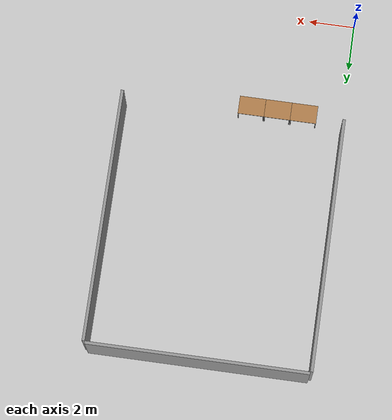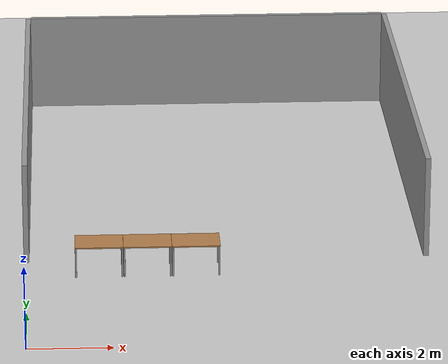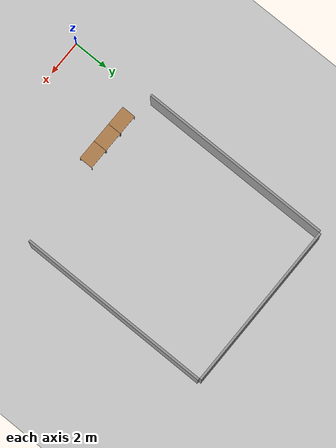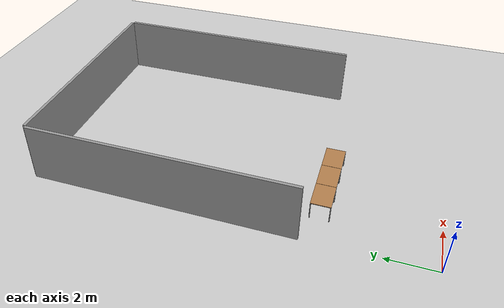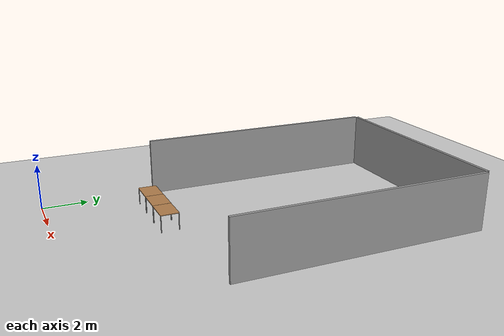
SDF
<sdf version="1.7">
 <world name="default">
  <model name="ground_plane">
   <static>1</static>
   <link name="link">
    <collision name="collision">
     <geometry><plane><normal>0 0 1</normal><size>100 100</size></plane></geometry>
     <surface>
      <contact><collide_bitmask>65535</collide_bitmask></contact>
      <friction><ode><mu>100</mu><mu2>50</mu2></ode></friction>
     </surface>
    </collision>
    <visual name="visual">
     <cast_shadows>0</cast_shadows>
     <geometry><plane><normal>0 0 1</normal><size>100 100</size></plane></geometry>
     <material>
      <script><uri>file://media/materials/scripts/gazebo.material</uri><name>Gazebo/Grey</name></script>
     </material>
    </visual>
   </link>
  </model>
  <model name="wall2">
   <pose>4.78373 10.5765 0 0 -0 1.5708</pose>
   <link name="Wall_27">
    <collision name="Wall_27_Collision">
     <geometry><box><size>11 0.13 2.5</size></box></geometry>
     <pose>0 0 1.25 0 -0 0</pose>
    </collision>
    <visual name="Wall_27_Visual">
     <pose>0 0 1.25 0 -0 0</pose>
     <geometry><box><size>11 0.13 2.5</size></box></geometry>
     <material>
      <script><uri>file://media/materials/scripts/gazebo.material</uri><name>Gazebo/Grey</name></script>
      <ambient>1 1 1 1</ambient>
     </material>
     <meta><layer>0</layer></meta>
    </visual>
    <pose>-0.064778 4.81014 0 0 -0 0</pose>
   </link>
   <link name="Wall_29">
    <collision name="Wall_29_Collision">
     <geometry><box><size>9.49 0.13 2.5</size></box></geometry>
     <pose>0 0 1.25 0 -0 0</pose>
    </collision>
    <visual name="Wall_29_Visual">
     <pose>0 0 1.25 0 -0 0</pose>
     <geometry><box><size>9.49 0.13 2.5</size></box></geometry>
     <material>
      <script><uri>file://media/materials/scripts/gazebo.material</uri><name>Gazebo/Grey</name></script>
      <ambient>1 1 1 1</ambient>
     </material>
     <meta><layer>0</layer></meta>
    </visual>
    <pose>5.50002 7.4e-05 0 0 -0 -1.5708</pose>
   </link>
   <link name="Wall_31">
    <collision name="Wall_31_Collision">
     <geometry><box><size>11 0.13 2.5</size></box></geometry>
     <pose>0 0 1.25 0 -0 0</pose>
    </collision>
    <visual name="Wall_31_Visual">
     <pose>0 0 1.25 0 -0 0</pose>
     <geometry><box><size>11 0.13 2.5</size></box></geometry>
     <material>
      <script><uri>file://media/materials/scripts/gazebo.material</uri><name>Gazebo/Grey</name></script>
      <ambient>1 1 1 1</ambient>
     </material>
     <meta><layer>0</layer></meta>
    </visual>
    <pose>-0.065021 -4.81014 0 0 -0 0</pose>
   </link>
   <static>1</static>
  </model>
  <model name="table_mod_clone_0">
   <link name="link">
    <inertial>
     <mass>1</mass>
     <inertia><ixx>1</ixx><ixy>0</ixy><ixz>0</ixz><iyy>1</iyy><iyz>0</iyz><izz>1</izz></inertia>
    </inertial>
    <visual name="visual1">
     <pose>0 0 0.87 0 -0 0</pose>
     <geometry><box><size>1.15 0.8 0.03</size></box></geometry>
     <material>
      <script><uri>file://media/materials/scripts/gazebo.material</uri><name>Gazebo/Wood</name></script>
      <shader type="pixel"><normal_map>__default__</normal_map></shader>
      <ambient>1 1 1 1</ambient>
      <diffuse>1 1 1 1</diffuse>
      <specular>0.2 0.2 0.2 1</specular>
      <emissive>0 0 0 1</emissive>
     </material>
    </visual>
    <visual name="back_right_leg">
     <pose>-0.55 -0.38 0.5 0 -0 0</pose>
     <geometry><cylinder><radius>0.02</radius><length>0.75</length></cylinder></geometry>
     <material>
      <script><uri>file://media/materials/scripts/gazebo.material</uri><name>Gazebo/Grey</name></script>
      <shader type="pixel"><normal_map>__default__</normal_map></shader>
      <ambient>0.3 0.3 0.3 1</ambient>
      <diffuse>0.7 0.7 0.7 1</diffuse>
      <specular>0.01 0.01 0.01 1</specular>
      <emissive>0 0 0 1</emissive>
     </material>
    </visual>
    <visual name="front_right_leg">
     <pose>0.55 -0.38 0.5 0 -0 0</pose>
     <geometry><cylinder><radius>0.02</radius><length>0.75</length></cylinder></geometry>
     <material>
      <script><uri>file://media/materials/scripts/gazebo.material</uri><name>Gazebo/Grey</name></script>
      <shader type="pixel"><normal_map>__default__</normal_map></shader>
      <ambient>0.3 0.3 0.3 1</ambient>
      <diffuse>0.7 0.7 0.7 1</diffuse>
      <specular>0.01 0.01 0.01 1</specular>
      <emissive>0 0 0 1</emissive>
     </material>
    </visual>
    <visual name="back_left_leg">
     <pose>-0.55 0.38 0.5 0 -0 0</pose>
     <geometry><cylinder><radius>0.02</radius><length>0.75</length></cylinder></geometry>
     <material>
      <script><uri>file://media/materials/scripts/gazebo.material</uri><name>Gazebo/Grey</name></script>
      <shader type="pixel"><normal_map>__default__</normal_map></shader>
      <ambient>0.3 0.3 0.3 1</ambient>
      <diffuse>0.7 0.7 0.7 1</diffuse>
      <specular>0.01 0.01 0.01 1</specular>
      <emissive>0 0 0 1</emissive>
     </material>
    </visual>
    <visual name="front_left_leg">
     <pose>0.55 0.38 0.5 0 -0 0</pose>
     <geometry><cylinder><radius>0.02</radius><length>0.75</length></cylinder></geometry>
     <material>
      <script><uri>file://media/materials/scripts/gazebo.material</uri><name>Gazebo/Grey</name></script>
      <shader type="pixel"><normal_map>__default__</normal_map></shader>
      <ambient>0.3 0.3 0.3 1</ambient>
      <diffuse>0.7 0.7 0.7 1</diffuse>
      <specular>0.01 0.01 0.01 1</specular>
      <emissive>0 0 0 1</emissive>
     </material>
    </visual>
    <collision name="surface">
     <pose>0 0 0.87 0 -0 0</pose>
     <geometry><box><size>1.15 0.8 0.03</size></box></geometry>
     <surface>
      <friction>
       <ode><mu>0.6</mu><mu2>0.6</mu2><fdir1>0 0 0</fdir1><slip1>0</slip1><slip2>0</slip2></ode>
       <torsional>
        <coefficient>1</coefficient>
        <patch_radius>0</patch_radius>
        <surface_radius>0</surface_radius>
        <use_patch_radius>1</use_patch_radius>
        <ode><slip>0</slip></ode>
       </torsional>
      </friction>
      <bounce><restitution_coefficient>0</restitution_coefficient><threshold>1e+06</threshold></bounce>
      <contact>
       <collide_without_contact>0</collide_without_contact>
       <collide_without_contact_bitmask>1</collide_without_contact_bitmask>
       <collide_bitmask>1</collide_bitmask>
       <ode>
        <soft_cfm>0</soft_cfm>
        <soft_erp>0.2</soft_erp>
        <kp>1e+13</kp>
        <kd>1</kd>
        <max_vel>0.01</max_vel>
        <min_depth>0</min_depth>
       </ode>
       <bullet>
        <split_impulse>1</split_impulse>
        <split_impulse_penetration_threshold>-0.01</split_impulse_penetration_threshold>
        <soft_cfm>0</soft_cfm>
        <soft_erp>0.2</soft_erp>
        <kp>1e+13</kp>
        <kd>1</kd>
       </bullet>
      </contact>
     </surface>
    </collision>
    <collision name="back_right_leg">
     <pose>-0.55 -0.38 0.5 0 -0 0</pose>
     <geometry><cylinder><radius>0.02</radius><length>0.75</length></cylinder></geometry>
     <surface>
      <friction>
       <ode><mu>1</mu><mu2>1</mu2><fdir1>0 0 0</fdir1><slip1>0</slip1><slip2>0</slip2></ode>
       <torsional>
        <coefficient>1</coefficient>
        <patch_radius>0</patch_radius>
        <surface_radius>0</surface_radius>
        <use_patch_radius>1</use_patch_radius>
        <ode><slip>0</slip></ode>
       </torsional>
      </friction>
      <bounce><restitution_coefficient>0</restitution_coefficient><threshold>1e+06</threshold></bounce>
      <contact>
       <collide_without_contact>0</collide_without_contact>
       <collide_without_contact_bitmask>1</collide_without_contact_bitmask>
       <collide_bitmask>1</collide_bitmask>
       <ode>
        <soft_cfm>0</soft_cfm>
        <soft_erp>0.2</soft_erp>
        <kp>1e+13</kp>
        <kd>1</kd>
        <max_vel>0.01</max_vel>
        <min_depth>0</min_depth>
       </ode>
       <bullet>
        <split_impulse>1</split_impulse>
        <split_impulse_penetration_threshold>-0.01</split_impulse_penetration_threshold>
        <soft_cfm>0</soft_cfm>
        <soft_erp>0.2</soft_erp>
        <kp>1e+13</kp>
        <kd>1</kd>
       </bullet>
      </contact>
     </surface>
    </collision>
    <collision name="back_left_leg">
     <pose>-0.55 0.38 0.5 0 -0 0</pose>
     <geometry><cylinder><radius>0.02</radius><length>0.75</length></cylinder></geometry>
     <surface>
      <friction>
       <ode><mu>1</mu><mu2>1</mu2><fdir1>0 0 0</fdir1><slip1>0</slip1><slip2>0</slip2></ode>
       <torsional>
        <coefficient>1</coefficient>
        <patch_radius>0</patch_radius>
        <surface_radius>0</surface_radius>
        <use_patch_radius>1</use_patch_radius>
        <ode><slip>0</slip></ode>
       </torsional>
      </friction>
      <bounce><restitution_coefficient>0</restitution_coefficient><threshold>1e+06</threshold></bounce>
      <contact>
       <collide_without_contact>0</collide_without_contact>
       <collide_without_contact_bitmask>1</collide_without_contact_bitmask>
       <collide_bitmask>1</collide_bitmask>
       <ode>
        <soft_cfm>0</soft_cfm>
        <soft_erp>0.2</soft_erp>
        <kp>1e+13</kp>
        <kd>1</kd>
        <max_vel>0.01</max_vel>
        <min_depth>0</min_depth>
       </ode>
       <bullet>
        <split_impulse>1</split_impulse>
        <split_impulse_penetration_threshold>-0.01</split_impulse_penetration_threshold>
        <soft_cfm>0</soft_cfm>
        <soft_erp>0.2</soft_erp>
        <kp>1e+13</kp>
        <kd>1</kd>
       </bullet>
      </contact>
     </surface>
    </collision>
    <collision name="front_left_leg">
     <pose>0.55 0.38 0.5 0 -0 0</pose>
     <geometry><cylinder><radius>0.02</radius><length>0.75</length></cylinder></geometry>
     <surface>
      <friction>
       <ode><mu>1</mu><mu2>1</mu2><fdir1>0 0 0</fdir1><slip1>0</slip1><slip2>0</slip2></ode>
       <torsional>
        <coefficient>1</coefficient>
        <patch_radius>0</patch_radius>
        <surface_radius>0</surface_radius>
        <use_patch_radius>1</use_patch_radius>
        <ode><slip>0</slip></ode>
       </torsional>
      </friction>
      <bounce><restitution_coefficient>0</restitution_coefficient><threshold>1e+06</threshold></bounce>
      <contact>
       <collide_without_contact>0</collide_without_contact>
       <collide_without_contact_bitmask>1</collide_without_contact_bitmask>
       <collide_bitmask>1</collide_bitmask>
       <ode>
        <soft_cfm>0</soft_cfm>
        <soft_erp>0.2</soft_erp>
        <kp>1e+13</kp>
        <kd>1</kd>
        <max_vel>0.01</max_vel>
        <min_depth>0</min_depth>
       </ode>
       <bullet>
        <split_impulse>1</split_impulse>
        <split_impulse_penetration_threshold>-0.01</split_impulse_penetration_threshold>
        <soft_cfm>0</soft_cfm>
        <soft_erp>0.2</soft_erp>
        <kp>1e+13</kp>
        <kd>1</kd>
       </bullet>
      </contact>
     </surface>
    </collision>
    <collision name="front_right_leg">
     <pose>0.55 -0.38 0.5 0 -0 0</pose>
     <geometry><cylinder><radius>0.02</radius><length>0.75</length></cylinder></geometry>
     <surface>
      <friction>
       <ode><mu>1</mu><mu2>1</mu2><fdir1>0 0 0</fdir1><slip1>0</slip1><slip2>0</slip2></ode>
       <torsional>
        <coefficient>1</coefficient>
        <patch_radius>0</patch_radius>
        <surface_radius>0</surface_radius>
        <use_patch_radius>1</use_patch_radius>
        <ode><slip>0</slip></ode>
       </torsional>
      </friction>
      <bounce><restitution_coefficient>0</restitution_coefficient><threshold>1e+06</threshold></bounce>
      <contact>
       <collide_without_contact>0</collide_without_contact>
       <collide_without_contact_bitmask>1</collide_without_contact_bitmask>
       <collide_bitmask>1</collide_bitmask>
       <ode>
        <soft_cfm>0</soft_cfm>
        <soft_erp>0.2</soft_erp>
        <kp>1e+13</kp>
        <kd>1</kd>
        <max_vel>0.01</max_vel>
        <min_depth>0</min_depth>
       </ode>
       <bullet>
        <split_impulse>1</split_impulse>
        <split_impulse_penetration_threshold>-0.01</split_impulse_penetration_threshold>
        <soft_cfm>0</soft_cfm>
        <soft_erp>0.2</soft_erp>
        <kp>1e+13</kp>
        <kd>1</kd>
       </bullet>
      </contact>
     </surface>
    </collision>
   </link>
   <static>1</static>
   <pose>1.7084 4.46917 -0.134214 0 0 -4e-06</pose>
  </model>
  <model name="table_mod_clone_0_clone">
   <link name="link">
    <inertial>
     <mass>1</mass>
     <inertia><ixx>1</ixx><ixy>0</ixy><ixz>0</ixz><iyy>1</iyy><iyz>0</iyz><izz>1</izz></inertia>
    </inertial>
    <visual name="visual1">
     <pose>0 0 0.87 0 -0 0</pose>
     <geometry><box><size>1.15 0.8 0.03</size></box></geometry>
     <material>
      <script><uri>file://media/materials/scripts/gazebo.material</uri><name>Gazebo/Wood</name></script>
      <shader type="pixel"><normal_map>__default__</normal_map></shader>
      <ambient>1 1 1 1</ambient>
      <diffuse>1 1 1 1</diffuse>
      <specular>0.2 0.2 0.2 1</specular>
      <emissive>0 0 0 1</emissive>
     </material>
    </visual>
    <visual name="back_right_leg">
     <pose>-0.55 -0.38 0.5 0 -0 0</pose>
     <geometry><cylinder><radius>0.02</radius><length>0.75</length></cylinder></geometry>
     <material>
      <script><uri>file://media/materials/scripts/gazebo.material</uri><name>Gazebo/Grey</name></script>
      <shader type="pixel"><normal_map>__default__</normal_map></shader>
      <ambient>0.3 0.3 0.3 1</ambient>
      <diffuse>0.7 0.7 0.7 1</diffuse>
      <specular>0.01 0.01 0.01 1</specular>
      <emissive>0 0 0 1</emissive>
     </material>
    </visual>
    <visual name="front_right_leg">
     <pose>0.55 -0.38 0.5 0 -0 0</pose>
     <geometry><cylinder><radius>0.02</radius><length>0.75</length></cylinder></geometry>
     <material>
      <script><uri>file://media/materials/scripts/gazebo.material</uri><name>Gazebo/Grey</name></script>
      <shader type="pixel"><normal_map>__default__</normal_map></shader>
      <ambient>0.3 0.3 0.3 1</ambient>
      <diffuse>0.7 0.7 0.7 1</diffuse>
      <specular>0.01 0.01 0.01 1</specular>
      <emissive>0 0 0 1</emissive>
     </material>
    </visual>
    <visual name="back_left_leg">
     <pose>-0.55 0.38 0.5 0 -0 0</pose>
     <geometry><cylinder><radius>0.02</radius><length>0.75</length></cylinder></geometry>
     <material>
      <script><uri>file://media/materials/scripts/gazebo.material</uri><name>Gazebo/Grey</name></script>
      <shader type="pixel"><normal_map>__default__</normal_map></shader>
      <ambient>0.3 0.3 0.3 1</ambient>
      <diffuse>0.7 0.7 0.7 1</diffuse>
      <specular>0.01 0.01 0.01 1</specular>
      <emissive>0 0 0 1</emissive>
     </material>
    </visual>
    <visual name="front_left_leg">
     <pose>0.55 0.38 0.5 0 -0 0</pose>
     <geometry><cylinder><radius>0.02</radius><length>0.75</length></cylinder></geometry>
     <material>
      <script><uri>file://media/materials/scripts/gazebo.material</uri><name>Gazebo/Grey</name></script>
      <shader type="pixel"><normal_map>__default__</normal_map></shader>
      <ambient>0.3 0.3 0.3 1</ambient>
      <diffuse>0.7 0.7 0.7 1</diffuse>
      <specular>0.01 0.01 0.01 1</specular>
      <emissive>0 0 0 1</emissive>
     </material>
    </visual>
    <collision name="surface">
     <pose>0 0 0.87 0 -0 0</pose>
     <geometry><box><size>1.15 0.8 0.03</size></box></geometry>
     <surface>
      <friction>
       <ode><mu>0.6</mu><mu2>0.6</mu2><fdir1>0 0 0</fdir1><slip1>0</slip1><slip2>0</slip2></ode>
       <torsional>
        <coefficient>1</coefficient>
        <patch_radius>0</patch_radius>
        <surface_radius>0</surface_radius>
        <use_patch_radius>1</use_patch_radius>
        <ode><slip>0</slip></ode>
       </torsional>
      </friction>
      <bounce><restitution_coefficient>0</restitution_coefficient><threshold>1e+06</threshold></bounce>
      <contact>
       <collide_without_contact>0</collide_without_contact>
       <collide_without_contact_bitmask>1</collide_without_contact_bitmask>
       <collide_bitmask>1</collide_bitmask>
       <ode>
        <soft_cfm>0</soft_cfm>
        <soft_erp>0.2</soft_erp>
        <kp>1e+13</kp>
        <kd>1</kd>
        <max_vel>0.01</max_vel>
        <min_depth>0</min_depth>
       </ode>
       <bullet>
        <split_impulse>1</split_impulse>
        <split_impulse_penetration_threshold>-0.01</split_impulse_penetration_threshold>
        <soft_cfm>0</soft_cfm>
        <soft_erp>0.2</soft_erp>
        <kp>1e+13</kp>
        <kd>1</kd>
       </bullet>
      </contact>
     </surface>
    </collision>
    <collision name="back_right_leg">
     <pose>-0.55 -0.38 0.5 0 -0 0</pose>
     <geometry><cylinder><radius>0.02</radius><length>0.75</length></cylinder></geometry>
     <surface>
      <friction>
       <ode><mu>1</mu><mu2>1</mu2><fdir1>0 0 0</fdir1><slip1>0</slip1><slip2>0</slip2></ode>
       <torsional>
        <coefficient>1</coefficient>
        <patch_radius>0</patch_radius>
        <surface_radius>0</surface_radius>
        <use_patch_radius>1</use_patch_radius>
        <ode><slip>0</slip></ode>
       </torsional>
      </friction>
      <bounce><restitution_coefficient>0</restitution_coefficient><threshold>1e+06</threshold></bounce>
      <contact>
       <collide_without_contact>0</collide_without_contact>
       <collide_without_contact_bitmask>1</collide_without_contact_bitmask>
       <collide_bitmask>1</collide_bitmask>
       <ode>
        <soft_cfm>0</soft_cfm>
        <soft_erp>0.2</soft_erp>
        <kp>1e+13</kp>
        <kd>1</kd>
        <max_vel>0.01</max_vel>
        <min_depth>0</min_depth>
       </ode>
       <bullet>
        <split_impulse>1</split_impulse>
        <split_impulse_penetration_threshold>-0.01</split_impulse_penetration_threshold>
        <soft_cfm>0</soft_cfm>
        <soft_erp>0.2</soft_erp>
        <kp>1e+13</kp>
        <kd>1</kd>
       </bullet>
      </contact>
     </surface>
    </collision>
    <collision name="back_left_leg">
     <pose>-0.55 0.38 0.5 0 -0 0</pose>
     <geometry><cylinder><radius>0.02</radius><length>0.75</length></cylinder></geometry>
     <surface>
      <friction>
       <ode><mu>1</mu><mu2>1</mu2><fdir1>0 0 0</fdir1><slip1>0</slip1><slip2>0</slip2></ode>
       <torsional>
        <coefficient>1</coefficient>
        <patch_radius>0</patch_radius>
        <surface_radius>0</surface_radius>
        <use_patch_radius>1</use_patch_radius>
        <ode><slip>0</slip></ode>
       </torsional>
      </friction>
      <bounce><restitution_coefficient>0</restitution_coefficient><threshold>1e+06</threshold></bounce>
      <contact>
       <collide_without_contact>0</collide_without_contact>
       <collide_without_contact_bitmask>1</collide_without_contact_bitmask>
       <collide_bitmask>1</collide_bitmask>
       <ode>
        <soft_cfm>0</soft_cfm>
        <soft_erp>0.2</soft_erp>
        <kp>1e+13</kp>
        <kd>1</kd>
        <max_vel>0.01</max_vel>
        <min_depth>0</min_depth>
       </ode>
       <bullet>
        <split_impulse>1</split_impulse>
        <split_impulse_penetration_threshold>-0.01</split_impulse_penetration_threshold>
        <soft_cfm>0</soft_cfm>
        <soft_erp>0.2</soft_erp>
        <kp>1e+13</kp>
        <kd>1</kd>
       </bullet>
      </contact>
     </surface>
    </collision>
    <collision name="front_left_leg">
     <pose>0.55 0.38 0.5 0 -0 0</pose>
     <geometry><cylinder><radius>0.02</radius><length>0.75</length></cylinder></geometry>
     <surface>
      <friction>
       <ode><mu>1</mu><mu2>1</mu2><fdir1>0 0 0</fdir1><slip1>0</slip1><slip2>0</slip2></ode>
       <torsional>
        <coefficient>1</coefficient>
        <patch_radius>0</patch_radius>
        <surface_radius>0</surface_radius>
        <use_patch_radius>1</use_patch_radius>
        <ode><slip>0</slip></ode>
       </torsional>
      </friction>
      <bounce><restitution_coefficient>0</restitution_coefficient><threshold>1e+06</threshold></bounce>
      <contact>
       <collide_without_contact>0</collide_without_contact>
       <collide_without_contact_bitmask>1</collide_without_contact_bitmask>
       <collide_bitmask>1</collide_bitmask>
       <ode>
        <soft_cfm>0</soft_cfm>
        <soft_erp>0.2</soft_erp>
        <kp>1e+13</kp>
        <kd>1</kd>
        <max_vel>0.01</max_vel>
        <min_depth>0</min_depth>
       </ode>
       <bullet>
        <split_impulse>1</split_impulse>
        <split_impulse_penetration_threshold>-0.01</split_impulse_penetration_threshold>
        <soft_cfm>0</soft_cfm>
        <soft_erp>0.2</soft_erp>
        <kp>1e+13</kp>
        <kd>1</kd>
       </bullet>
      </contact>
     </surface>
    </collision>
    <collision name="front_right_leg">
     <pose>0.55 -0.38 0.5 0 -0 0</pose>
     <geometry><cylinder><radius>0.02</radius><length>0.75</length></cylinder></geometry>
     <surface>
      <friction>
       <ode><mu>1</mu><mu2>1</mu2><fdir1>0 0 0</fdir1><slip1>0</slip1><slip2>0</slip2></ode>
       <torsional>
        <coefficient>1</coefficient>
        <patch_radius>0</patch_radius>
        <surface_radius>0</surface_radius>
        <use_patch_radius>1</use_patch_radius>
        <ode><slip>0</slip></ode>
       </torsional>
      </friction>
      <bounce><restitution_coefficient>0</restitution_coefficient><threshold>1e+06</threshold></bounce>
      <contact>
       <collide_without_contact>0</collide_without_contact>
       <collide_without_contact_bitmask>1</collide_without_contact_bitmask>
       <collide_bitmask>1</collide_bitmask>
       <ode>
        <soft_cfm>0</soft_cfm>
        <soft_erp>0.2</soft_erp>
        <kp>1e+13</kp>
        <kd>1</kd>
        <max_vel>0.01</max_vel>
        <min_depth>0</min_depth>
       </ode>
       <bullet>
        <split_impulse>1</split_impulse>
        <split_impulse_penetration_threshold>-0.01</split_impulse_penetration_threshold>
        <soft_cfm>0</soft_cfm>
        <soft_erp>0.2</soft_erp>
        <kp>1e+13</kp>
        <kd>1</kd>
       </bullet>
      </contact>
     </surface>
    </collision>
   </link>
   <static>1</static>
   <pose>2.86118 4.46763 -0.134214 0 0 -4e-06</pose>
  </model>
  <model name="table_mod_clone_0_clone_0">
   <link name="link">
    <inertial>
     <mass>1</mass>
     <inertia><ixx>1</ixx><ixy>0</ixy><ixz>0</ixz><iyy>1</iyy><iyz>0</iyz><izz>1</izz></inertia>
    </inertial>
    <visual name="visual1">
     <pose>0 0 0.87 0 -0 0</pose>
     <geometry><box><size>1.15 0.8 0.03</size></box></geometry>
     <material>
      <script><uri>file://media/materials/scripts/gazebo.material</uri><name>Gazebo/Wood</name></script>
      <shader type="pixel"><normal_map>__default__</normal_map></shader>
      <ambient>1 1 1 1</ambient>
      <diffuse>1 1 1 1</diffuse>
      <specular>0.2 0.2 0.2 1</specular>
      <emissive>0 0 0 1</emissive>
     </material>
    </visual>
    <visual name="back_right_leg">
     <pose>-0.55 -0.38 0.5 0 -0 0</pose>
     <geometry><cylinder><radius>0.02</radius><length>0.75</length></cylinder></geometry>
     <material>
      <script><uri>file://media/materials/scripts/gazebo.material</uri><name>Gazebo/Grey</name></script>
      <shader type="pixel"><normal_map>__default__</normal_map></shader>
      <ambient>0.3 0.3 0.3 1</ambient>
      <diffuse>0.7 0.7 0.7 1</diffuse>
      <specular>0.01 0.01 0.01 1</specular>
      <emissive>0 0 0 1</emissive>
     </material>
    </visual>
    <visual name="front_right_leg">
     <pose>0.55 -0.38 0.5 0 -0 0</pose>
     <geometry><cylinder><radius>0.02</radius><length>0.75</length></cylinder></geometry>
     <material>
      <script><uri>file://media/materials/scripts/gazebo.material</uri><name>Gazebo/Grey</name></script>
      <shader type="pixel"><normal_map>__default__</normal_map></shader>
      <ambient>0.3 0.3 0.3 1</ambient>
      <diffuse>0.7 0.7 0.7 1</diffuse>
      <specular>0.01 0.01 0.01 1</specular>
      <emissive>0 0 0 1</emissive>
     </material>
    </visual>
    <visual name="back_left_leg">
     <pose>-0.55 0.38 0.5 0 -0 0</pose>
     <geometry><cylinder><radius>0.02</radius><length>0.75</length></cylinder></geometry>
     <material>
      <script><uri>file://media/materials/scripts/gazebo.material</uri><name>Gazebo/Grey</name></script>
      <shader type="pixel"><normal_map>__default__</normal_map></shader>
      <ambient>0.3 0.3 0.3 1</ambient>
      <diffuse>0.7 0.7 0.7 1</diffuse>
      <specular>0.01 0.01 0.01 1</specular>
      <emissive>0 0 0 1</emissive>
     </material>
    </visual>
    <visual name="front_left_leg">
     <pose>0.55 0.38 0.5 0 -0 0</pose>
     <geometry><cylinder><radius>0.02</radius><length>0.75</length></cylinder></geometry>
     <material>
      <script><uri>file://media/materials/scripts/gazebo.material</uri><name>Gazebo/Grey</name></script>
      <shader type="pixel"><normal_map>__default__</normal_map></shader>
      <ambient>0.3 0.3 0.3 1</ambient>
      <diffuse>0.7 0.7 0.7 1</diffuse>
      <specular>0.01 0.01 0.01 1</specular>
      <emissive>0 0 0 1</emissive>
     </material>
    </visual>
    <collision name="surface">
     <pose>0 0 0.87 0 -0 0</pose>
     <geometry><box><size>1.15 0.8 0.03</size></box></geometry>
     <surface>
      <friction>
       <ode><mu>0.6</mu><mu2>0.6</mu2><fdir1>0 0 0</fdir1><slip1>0</slip1><slip2>0</slip2></ode>
       <torsional>
        <coefficient>1</coefficient>
        <patch_radius>0</patch_radius>
        <surface_radius>0</surface_radius>
        <use_patch_radius>1</use_patch_radius>
        <ode><slip>0</slip></ode>
       </torsional>
      </friction>
      <bounce><restitution_coefficient>0</restitution_coefficient><threshold>1e+06</threshold></bounce>
      <contact>
       <collide_without_contact>0</collide_without_contact>
       <collide_without_contact_bitmask>1</collide_without_contact_bitmask>
       <collide_bitmask>1</collide_bitmask>
       <ode>
        <soft_cfm>0</soft_cfm>
        <soft_erp>0.2</soft_erp>
        <kp>1e+13</kp>
        <kd>1</kd>
        <max_vel>0.01</max_vel>
        <min_depth>0</min_depth>
       </ode>
       <bullet>
        <split_impulse>1</split_impulse>
        <split_impulse_penetration_threshold>-0.01</split_impulse_penetration_threshold>
        <soft_cfm>0</soft_cfm>
        <soft_erp>0.2</soft_erp>
        <kp>1e+13</kp>
        <kd>1</kd>
       </bullet>
      </contact>
     </surface>
    </collision>
    <collision name="back_right_leg">
     <pose>-0.55 -0.38 0.5 0 -0 0</pose>
     <geometry><cylinder><radius>0.02</radius><length>0.75</length></cylinder></geometry>
     <surface>
      <friction>
       <ode><mu>1</mu><mu2>1</mu2><fdir1>0 0 0</fdir1><slip1>0</slip1><slip2>0</slip2></ode>
       <torsional>
        <coefficient>1</coefficient>
        <patch_radius>0</patch_radius>
        <surface_radius>0</surface_radius>
        <use_patch_radius>1</use_patch_radius>
        <ode><slip>0</slip></ode>
       </torsional>
      </friction>
      <bounce><restitution_coefficient>0</restitution_coefficient><threshold>1e+06</threshold></bounce>
      <contact>
       <collide_without_contact>0</collide_without_contact>
       <collide_without_contact_bitmask>1</collide_without_contact_bitmask>
       <collide_bitmask>1</collide_bitmask>
       <ode>
        <soft_cfm>0</soft_cfm>
        <soft_erp>0.2</soft_erp>
        <kp>1e+13</kp>
        <kd>1</kd>
        <max_vel>0.01</max_vel>
        <min_depth>0</min_depth>
       </ode>
       <bullet>
        <split_impulse>1</split_impulse>
        <split_impulse_penetration_threshold>-0.01</split_impulse_penetration_threshold>
        <soft_cfm>0</soft_cfm>
        <soft_erp>0.2</soft_erp>
        <kp>1e+13</kp>
        <kd>1</kd>
       </bullet>
      </contact>
     </surface>
    </collision>
    <collision name="back_left_leg">
     <pose>-0.55 0.38 0.5 0 -0 0</pose>
     <geometry><cylinder><radius>0.02</radius><length>0.75</length></cylinder></geometry>
     <surface>
      <friction>
       <ode><mu>1</mu><mu2>1</mu2><fdir1>0 0 0</fdir1><slip1>0</slip1><slip2>0</slip2></ode>
       <torsional>
        <coefficient>1</coefficient>
        <patch_radius>0</patch_radius>
        <surface_radius>0</surface_radius>
        <use_patch_radius>1</use_patch_radius>
        <ode><slip>0</slip></ode>
       </torsional>
      </friction>
      <bounce><restitution_coefficient>0</restitution_coefficient><threshold>1e+06</threshold></bounce>
      <contact>
       <collide_without_contact>0</collide_without_contact>
       <collide_without_contact_bitmask>1</collide_without_contact_bitmask>
       <collide_bitmask>1</collide_bitmask>
       <ode>
        <soft_cfm>0</soft_cfm>
        <soft_erp>0.2</soft_erp>
        <kp>1e+13</kp>
        <kd>1</kd>
        <max_vel>0.01</max_vel>
        <min_depth>0</min_depth>
       </ode>
       <bullet>
        <split_impulse>1</split_impulse>
        <split_impulse_penetration_threshold>-0.01</split_impulse_penetration_threshold>
        <soft_cfm>0</soft_cfm>
        <soft_erp>0.2</soft_erp>
        <kp>1e+13</kp>
        <kd>1</kd>
       </bullet>
      </contact>
     </surface>
    </collision>
    <collision name="front_left_leg">
     <pose>0.55 0.38 0.5 0 -0 0</pose>
     <geometry><cylinder><radius>0.02</radius><length>0.75</length></cylinder></geometry>
     <surface>
      <friction>
       <ode><mu>1</mu><mu2>1</mu2><fdir1>0 0 0</fdir1><slip1>0</slip1><slip2>0</slip2></ode>
       <torsional>
        <coefficient>1</coefficient>
        <patch_radius>0</patch_radius>
        <surface_radius>0</surface_radius>
        <use_patch_radius>1</use_patch_radius>
        <ode><slip>0</slip></ode>
       </torsional>
      </friction>
      <bounce><restitution_coefficient>0</restitution_coefficient><threshold>1e+06</threshold></bounce>
      <contact>
       <collide_without_contact>0</collide_without_contact>
       <collide_without_contact_bitmask>1</collide_without_contact_bitmask>
       <collide_bitmask>1</collide_bitmask>
       <ode>
        <soft_cfm>0</soft_cfm>
        <soft_erp>0.2</soft_erp>
        <kp>1e+13</kp>
        <kd>1</kd>
        <max_vel>0.01</max_vel>
        <min_depth>0</min_depth>
       </ode>
       <bullet>
        <split_impulse>1</split_impulse>
        <split_impulse_penetration_threshold>-0.01</split_impulse_penetration_threshold>
        <soft_cfm>0</soft_cfm>
        <soft_erp>0.2</soft_erp>
        <kp>1e+13</kp>
        <kd>1</kd>
       </bullet>
      </contact>
     </surface>
    </collision>
    <collision name="front_right_leg">
     <pose>0.55 -0.38 0.5 0 -0 0</pose>
     <geometry><cylinder><radius>0.02</radius><length>0.75</length></cylinder></geometry>
     <surface>
      <friction>
       <ode><mu>1</mu><mu2>1</mu2><fdir1>0 0 0</fdir1><slip1>0</slip1><slip2>0</slip2></ode>
       <torsional>
        <coefficient>1</coefficient>
        <patch_radius>0</patch_radius>
        <surface_radius>0</surface_radius>
        <use_patch_radius>1</use_patch_radius>
        <ode><slip>0</slip></ode>
       </torsional>
      </friction>
      <bounce><restitution_coefficient>0</restitution_coefficient><threshold>1e+06</threshold></bounce>
      <contact>
       <collide_without_contact>0</collide_without_contact>
       <collide_without_contact_bitmask>1</collide_without_contact_bitmask>
       <collide_bitmask>1</collide_bitmask>
       <ode>
        <soft_cfm>0</soft_cfm>
        <soft_erp>0.2</soft_erp>
        <kp>1e+13</kp>
        <kd>1</kd>
        <max_vel>0.01</max_vel>
        <min_depth>0</min_depth>
       </ode>
       <bullet>
        <split_impulse>1</split_impulse>
        <split_impulse_penetration_threshold>-0.01</split_impulse_penetration_threshold>
        <soft_cfm>0</soft_cfm>
        <soft_erp>0.2</soft_erp>
        <kp>1e+13</kp>
        <kd>1</kd>
       </bullet>
      </contact>
     </surface>
    </collision>
   </link>
   <static>1</static>
   <pose>4.01232 4.46455 -0.134214 0 0 -4e-06</pose>
  </model>
 </world>
</sdf>
